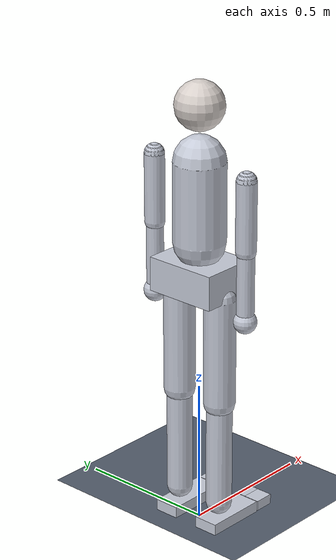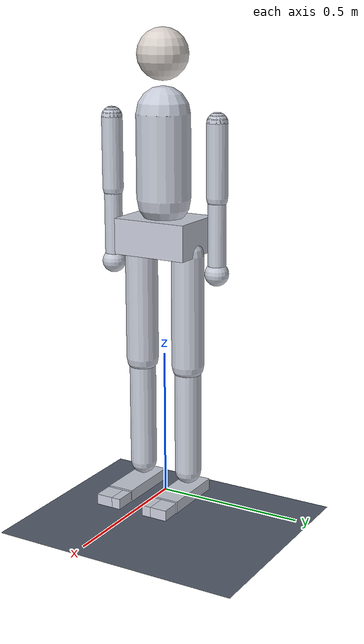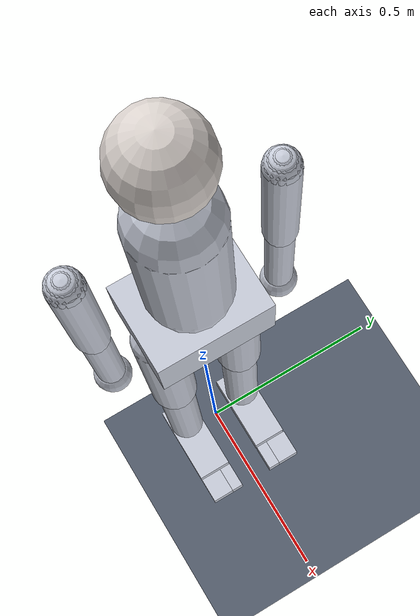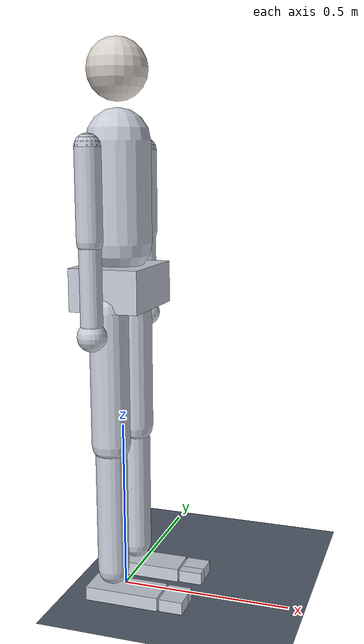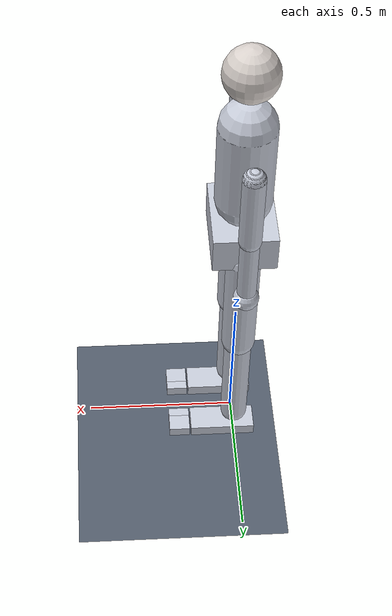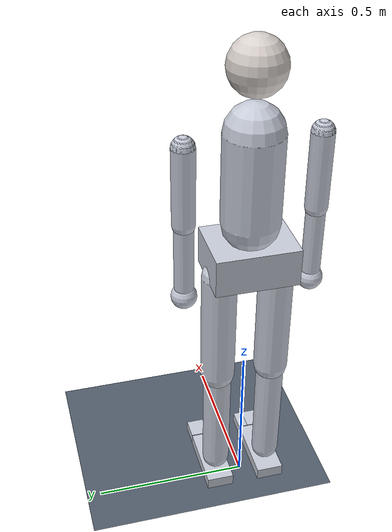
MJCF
<mujoco model="TX34_NOVA_v1">
  <compiler angle="radian" autolimits="true"/>
  <option timestep="0.005"/>

  <default>
    <joint damping="2" armature="0.02" limited="true"/>
    <geom contype="0" conaffinity="0" friction="1 0.005 0.0001" rgba="0.78 0.80 0.85 1"/>
    <position kp="80" forcerange="-150 150"/>
  </default>

  <worldbody>
    <light pos="0 0 3" dir="0 0 -1" diffuse="1 1 1"/>
    <geom name="floor" type="plane" size="5 5 0.1" contype="1" conaffinity="1" rgba="0.32 0.36 0.42 1"/>

    <body name="pelvis" pos="0 0 0.912">
      <freejoint/>
      <geom type="box" size="0.10 0.13 0.06" mass="5.4"/>

      <!-- ============ TRONCO, TESTA, BRACCIA ============ -->
      <body name="torso" pos="0 0 0.10">
        <geom name="r_act_sh_pitch" type="sphere" size="0.035" pos="0 -0.20 0.28" mass="1.047" contype="0" conaffinity="0"/>
        <geom name="l_act_sh_pitch" type="sphere" size="0.035" pos="0 0.20 0.28" mass="1.047" contype="0" conaffinity="0"/>
        <joint name="waist_yaw" axis="0 0 1" range="-0.2793 0.2793"/>
        <geom type="capsule" fromto="0 0 0.02 0 0 0.30" size="0.09" mass="17.3"/>

        <body name="head" pos="0 0 0.40">
          <joint name="neck_yaw"   axis="0 0 1" range="-1.0 1.0"/>
          <joint name="neck_pitch" axis="0 1 0" range="-0.6 0.6"/>
          <geom type="sphere" size="0.085" pos="0 0 0.09" mass="2.8" rgba="0.85 0.82 0.80 1"/>
        </body>

        <body name="r_upper_arm" pos="0 -0.20 0.28">
          <geom name="r_act_sh_roll" type="sphere" size="0.03" pos="0 0 0" mass="0.667" contype="0" conaffinity="0"/>
        <joint name="r_shoulder_pitch" axis="0 1 0" range="-2.8274 0.9425"/>
          <joint name="r_shoulder_roll"  axis="1 0 0" range="-1.414 1.414"/>
          <geom type="capsule" fromto="0 0 0 0 0 -0.24" size="0.035" mass="1.5"/>
          <body name="r_forearm" pos="0 0 -0.24">
            <joint name="r_elbow" axis="0 1 0" range="-2.3 0.0"/>
            <geom type="capsule" fromto="0 0 0 0 0 -0.22" size="0.030" mass="1.0"/>
            <body name="r_hand" pos="0 0 -0.25">
              <joint name="r_wrist_pitch" axis="0 1 0" range="-0.8 0.8"/>
              <geom type="sphere" size="0.04" mass="0.75"/>
            </body>
          </body>
        </body>

        <body name="l_upper_arm" pos="0 0.20 0.28">
          <geom name="l_act_sh_roll" type="sphere" size="0.03" pos="0 0 0" mass="0.667" contype="0" conaffinity="0"/>
        <joint name="l_shoulder_pitch" axis="0 1 0" range="-2.8274 0.9425"/>
          <joint name="l_shoulder_roll"  axis="1 0 0" range="-1.414 1.414"/>
          <geom type="capsule" fromto="0 0 0 0 0 -0.24" size="0.035" mass="1.5"/>
          <body name="l_forearm" pos="0 0 -0.24">
            <joint name="l_elbow" axis="0 1 0" range="-2.3 0.0"/>
            <geom type="capsule" fromto="0 0 0 0 0 -0.22" size="0.030" mass="1.0"/>
            <body name="l_hand" pos="0 0 -0.25">
              <joint name="l_wrist_pitch" axis="0 1 0" range="-0.8 0.8"/>
              <geom type="sphere" size="0.04" mass="0.75"/>
            </body>
          </body>
        </body>
      </body>

      <!-- ============ GAMBA DESTRA (7 DOF) ============ -->
      <body name="r_thigh" pos="0 -0.09 -0.06">
        <joint name="r_hip_yaw"   axis="0 0 1" range="-0.70 0.70"/>
        <joint name="r_hip_roll"  axis="1 0 0" range="-0.47 0.47"/>
        <joint name="r_hip_pitch" axis="0 1 0" range="-1.885 0.4712"/>
        <geom type="capsule" fromto="0 0 0 0 0 -0.38" size="0.055" mass="6.8"/>
        <body name="r_shank" pos="0 0 -0.38">
          <joint name="r_knee" axis="0 1 0" range="0.0 2.05"/>
          <geom type="capsule" fromto="0 0 0 0 0 -0.38" size="0.045" mass="4.0"/>
          <body name="r_foot" pos="0 0 -0.40">
            <joint name="r_ankle_pitch" axis="0 1 0" range="-0.47 0.47"/>
            <joint name="r_ankle_roll"  axis="1 0 0" range="-0.23 0.23"/>
            <geom name="r_sole" type="box" pos="0.04 0 -0.05" size="0.11 0.045 0.02"
                  mass="4.3" contype="1" conaffinity="1"/>
            <body name="r_hallux" pos="0.16 0 -0.05">
              <joint name="r_hallux_pitch" axis="0 1 0" range="0.0 0.873"/>
              <geom name="r_hallux_geom" type="box" pos="0.03 0.02925 0" size="0.035 0.01575 0.018" mass="0.105" contype="1" conaffinity="1"/>
            </body>
            <body name="r_toes" pos="0.16 0 -0.05">
              <joint name="r_toes_pitch" axis="0 1 0" range="0.0349 0.6981"/>
              <geom name="r_toes_geom" type="box" pos="0.03 -0.01575 0" size="0.035 0.02925 0.018" mass="0.195" contype="1" conaffinity="1"/>
            </body>
          </body>
        </body>
      </body>

      <!-- ============ GAMBA SINISTRA (7 DOF) ============ -->
      <body name="l_thigh" pos="0 0.09 -0.06">
        <joint name="l_hip_yaw"   axis="0 0 1" range="-0.70 0.70"/>
        <joint name="l_hip_roll"  axis="1 0 0" range="-0.47 0.47"/>
        <joint name="l_hip_pitch" axis="0 1 0" range="-1.885 0.4712"/>
        <geom type="capsule" fromto="0 0 0 0 0 -0.38" size="0.055" mass="6.8"/>
        <body name="l_shank" pos="0 0 -0.38">
          <joint name="l_knee" axis="0 1 0" range="0.0 2.05"/>
          <geom type="capsule" fromto="0 0 0 0 0 -0.38" size="0.045" mass="4.0"/>
          <body name="l_foot" pos="0 0 -0.40">
            <joint name="l_ankle_pitch" axis="0 1 0" range="-0.47 0.47"/>
            <joint name="l_ankle_roll"  axis="1 0 0" range="-0.23 0.23"/>
            <geom name="l_sole" type="box" pos="0.04 0 -0.05" size="0.11 0.045 0.02"
                  mass="4.3" contype="1" conaffinity="1"/>
            <body name="l_hallux" pos="0.16 0 -0.05">
              <joint name="l_hallux_pitch" axis="0 1 0" range="0.0 0.873"/>
              <geom name="l_hallux_geom" type="box" pos="0.03 -0.02925 0" size="0.035 0.01575 0.018" mass="0.105" contype="1" conaffinity="1"/>
            </body>
            <body name="l_toes" pos="0.16 0 -0.05">
              <joint name="l_toes_pitch" axis="0 1 0" range="0.0349 0.6981"/>
              <geom name="l_toes_geom" type="box" pos="0.03 0.01575 0" size="0.035 0.02925 0.018" mass="0.195" contype="1" conaffinity="1"/>
            </body>
          </body>
        </body>
      </body>
    </body>
  </worldbody>

  <actuator>
    <position name="waist_yaw" joint="waist_yaw" kp="100" forcerange="-2.5 2.5"/>
    <position name="neck_yaw" joint="neck_yaw" kp="30" forcerange="-10 10"/>
    <position name="neck_pitch" joint="neck_pitch" kp="30" forcerange="-10 10"/>
    <position name="r_shoulder_pitch" joint="r_shoulder_pitch" kp="60" forcerange="-43 43"/>
    <position name="r_shoulder_roll" joint="r_shoulder_roll" kp="60" forcerange="-20 20"/>
    <position name="r_elbow" joint="r_elbow" kp="40" forcerange="-8 8"/>
    <position name="r_wrist_pitch" joint="r_wrist_pitch" kp="20" forcerange="-1.4 1.4"/>
    <position name="l_shoulder_pitch" joint="l_shoulder_pitch" kp="60" forcerange="-43 43"/>
    <position name="l_shoulder_roll" joint="l_shoulder_roll" kp="60" forcerange="-20 20"/>
    <position name="l_elbow" joint="l_elbow" kp="40" forcerange="-8 8"/>
    <position name="l_wrist_pitch" joint="l_wrist_pitch" kp="20" forcerange="-1.4 1.4"/>
    <position name="r_hip_yaw" joint="r_hip_yaw" kp="200" forcerange="-80 80"/>
    <position name="r_hip_roll" joint="r_hip_roll" kp="200" forcerange="-80 80"/>
    <position name="r_hip_pitch" joint="r_hip_pitch" kp="200" forcerange="-120 120"/>
    <position name="r_knee" joint="r_knee" kp="200" forcerange="-120 120"/>
    <position name="r_ankle_pitch" joint="r_ankle_pitch" kp="130" forcerange="-80 80"/>
    <position name="r_ankle_roll" joint="r_ankle_roll" kp="130" forcerange="-40 40"/>
    <position name="r_hallux_pitch" joint="r_hallux_pitch" kp="30" forcerange="-4 4"/>
    <position name="r_toes_pitch" joint="r_toes_pitch" kp="30" forcerange="-3 3"/>
    <position name="l_hip_yaw" joint="l_hip_yaw" kp="200" forcerange="-80 80"/>
    <position name="l_hip_roll" joint="l_hip_roll" kp="200" forcerange="-80 80"/>
    <position name="l_hip_pitch" joint="l_hip_pitch" kp="200" forcerange="-120 120"/>
    <position name="l_knee" joint="l_knee" kp="200" forcerange="-120 120"/>
    <position name="l_ankle_pitch" joint="l_ankle_pitch" kp="130" forcerange="-80 80"/>
    <position name="l_ankle_roll" joint="l_ankle_roll" kp="130" forcerange="-40 40"/>
    <position name="l_hallux_pitch" joint="l_hallux_pitch" kp="30" forcerange="-4 4"/>
    <position name="l_toes_pitch" joint="l_toes_pitch" kp="30" forcerange="-3 3"/>
  </actuator>

  <keyframe>
    <key name="stand"
         qpos="0 0 0.912 1 0 0 0  0 0 0 0 0 0 0 0 0 0 0  0 0 0 0 0 0 0  0 0 0 0 0 0 0"
         ctrl="0 0 0 0 0 0 0 0 0 0 0 0 0 0 0 0 0 0 0 0 0 0 0 0 0"/>
  </keyframe>
</mujoco>
